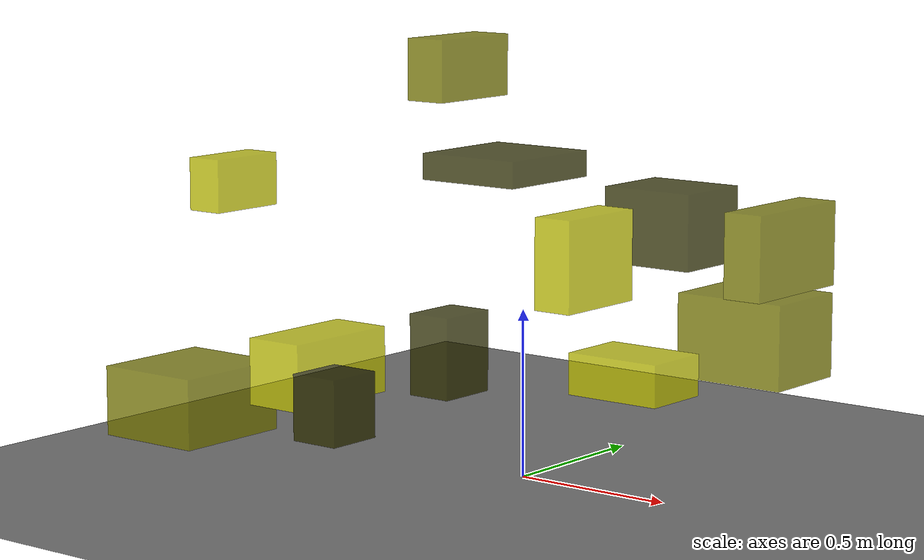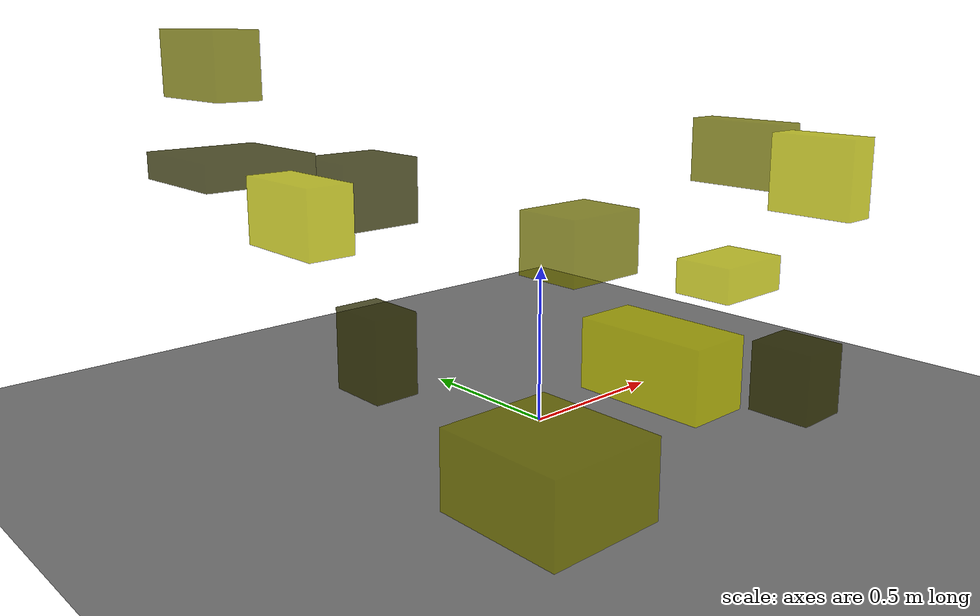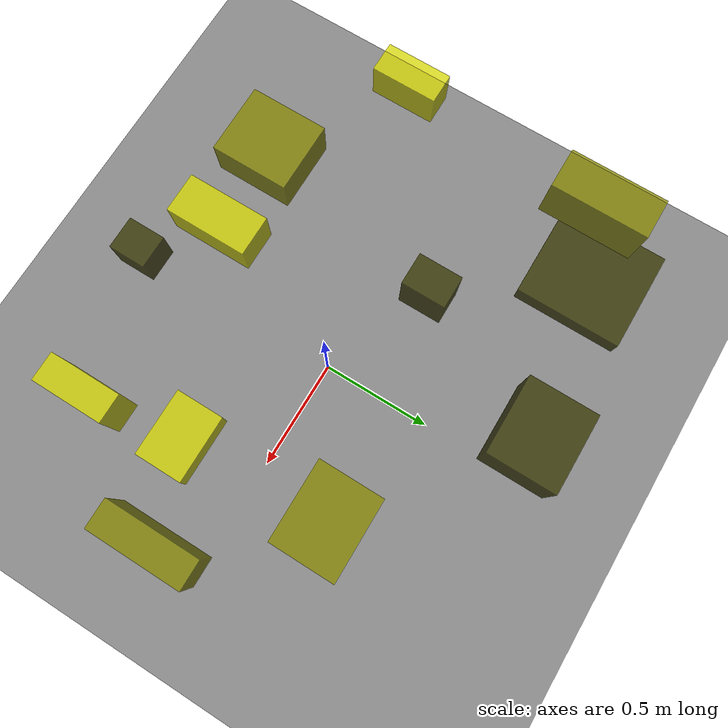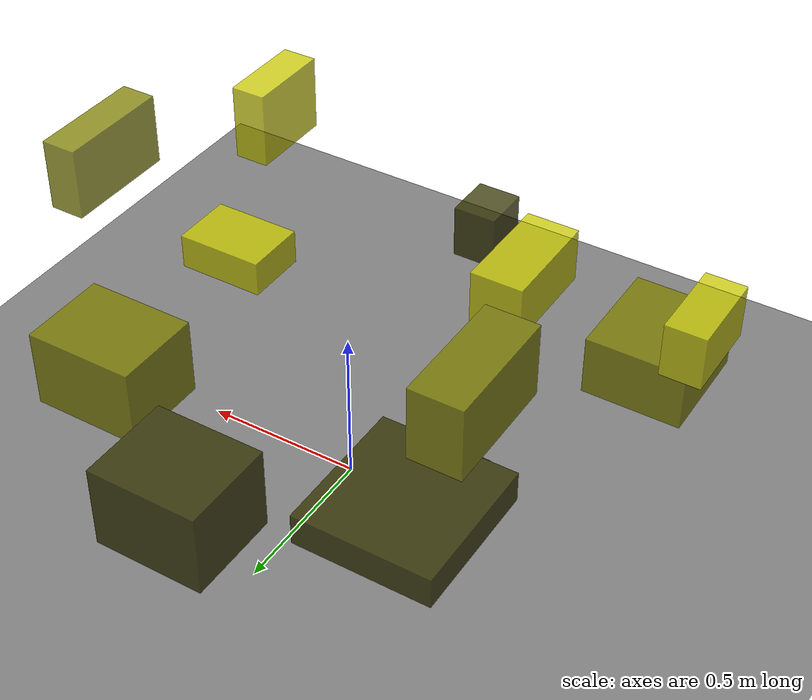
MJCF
<?xml version="1.0"?>
<mujoco model="obstacle_scene">
  <compiler angle="radian" coordinate="local"/>
  <option timestep="0.001" gravity="0 0 -9.81"/>

  <asset>
    <material name="obstacle_mat" rgba="0.8 0.8 0.0 0.8"/>
    <material name="ground_mat" rgba="0.5 0.5 0.5 1"/>
  </asset>

  <worldbody>
    <!-- Ground plane -->
    <geom name="ground" type="plane" size="3 3 0.1" material="ground_mat"/>

    <!-- Obstacles -->
    <body name="obstacle_0" pos="-0.075283 0.861111 0.644081">
      <geom name="obs_0" type="box" size="0.159237 0.137651 0.121334" rgba="0.2 0.2 0.0 0.8"/>
    </body>
    <body name="obstacle_1" pos="-0.666757 -0.702338 0.265997">
      <geom name="obs_1" type="box" size="0.163024 0.180499 0.101199" rgba="0.5 0.5 0.0 0.8"/>
    </body>
    <body name="obstacle_2" pos="-0.967329 -0.202933 0.818478">
      <geom name="obs_2" type="box" size="0.059156 0.128971 0.080829" rgba="0.8 0.8 0.0 0.8"/>
    </body>
    <body name="obstacle_3" pos="-0.465262 0.225379 0.279442">
      <geom name="obs_3" type="box" size="0.073775 0.100633 0.128170" rgba="0.2 0.2 0.0 0.8"/>
    </body>
    <body name="obstacle_4" pos="0.563339 0.367876 0.437880">
      <geom name="obs_4" type="box" size="0.173762 0.140756 0.124181" rgba="0.5 0.5 0.0 0.8"/>
    </body>
    <body name="obstacle_5" pos="0.591799 -0.277551 0.429730">
      <geom name="obs_5" type="box" size="0.143030 0.102799 0.058140" rgba="0.8 0.8 0.0 0.8"/>
    </body>
    <body name="obstacle_6" pos="0.036610 -0.875231 0.368103">
      <geom name="obs_6" type="box" size="0.072556 0.082696 0.091009" rgba="0.2 0.2 0.0 0.8"/>
    </body>
    <body name="obstacle_7" pos="0.929889 -0.083419 0.783251">
      <geom name="obs_7" type="box" size="0.056518 0.184867 0.115756" rgba="0.5 0.5 0.0 0.8"/>
    </body>
    <body name="obstacle_8" pos="-0.223461 -0.649646 0.410120">
      <geom name="obs_8" type="box" size="0.088814 0.182985 0.094094" rgba="0.8 0.8 0.0 0.8"/>
    </body>
    <body name="obstacle_9" pos="-0.643335 0.730871 0.799571">
      <geom name="obs_9" type="box" size="0.184851 0.195830 0.043092" rgba="0.2 0.2 0.0 0.8"/>
    </body>
    <body name="obstacle_10" pos="-0.749561 0.621665 1.121163">
      <geom name="obs_10" type="box" size="0.070618 0.168676 0.100008" rgba="0.5 0.5 0.0 0.8"/>
    </body>
    <body name="obstacle_11" pos="0.631706 -0.561405 0.786935">
      <geom name="obs_11" type="box" size="0.055562 0.138862 0.122158" rgba="0.8 0.8 0.0 0.8"/>
    </body>
  </worldbody>
</mujoco>
